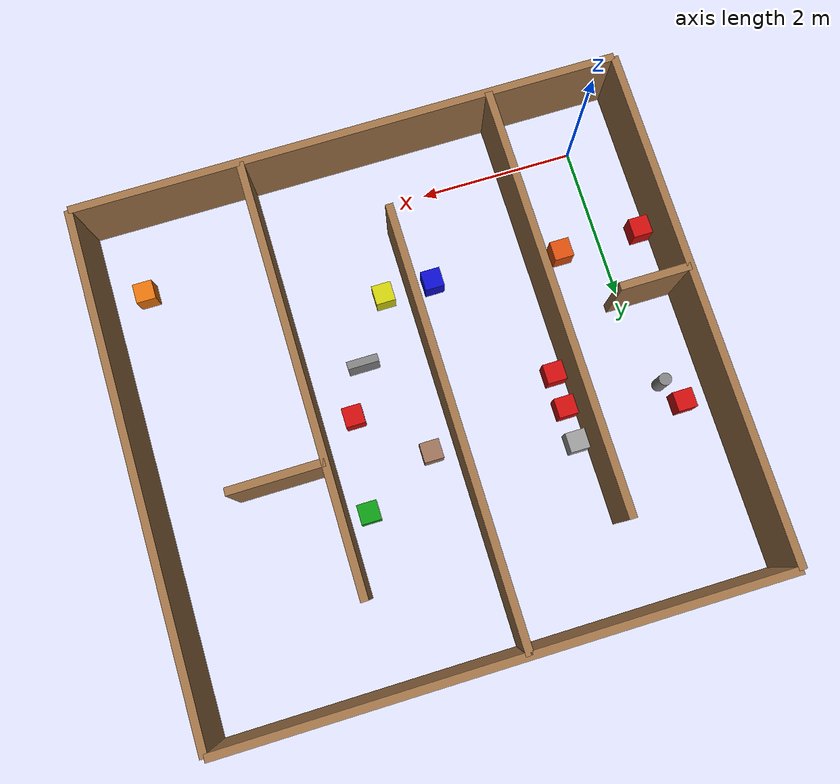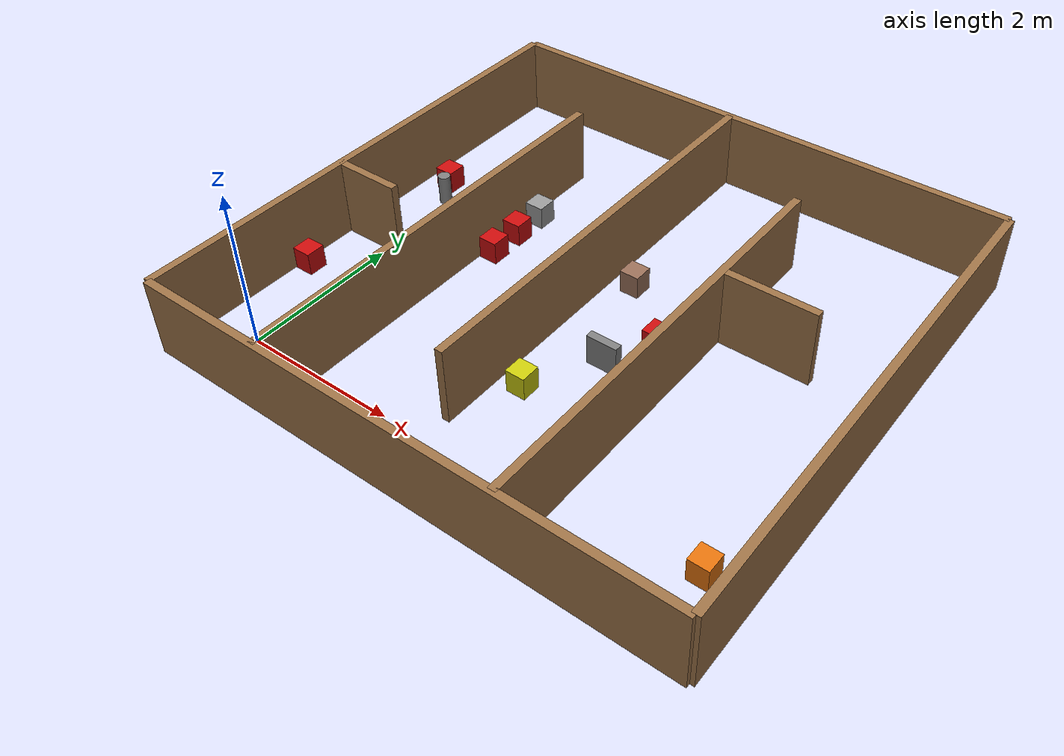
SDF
<sdf version="1.5">
 <world name="estres_rojo_calido">
  <physics type="ode">
   <max_step_size>0.001</max_step_size>
   <real_time_factor>1</real_time_factor>
   <real_time_update_rate>1000</real_time_update_rate>
   <gravity>0 0 -9.8</gravity>
  </physics>
  <plugin filename="gz-sim-physics-system" name="gz::sim::systems::Physics"/>
  <plugin filename="gz-sim-user-commands-system" name="gz::sim::systems::UserCommands"/>
  <plugin filename="gz-sim-scene-broadcaster-system" name="gz::sim::systems::SceneBroadcaster"/>
  <plugin filename="gz-sim-contact-system" name="gz::sim::systems::Contact"/>
  <plugin filename="gz-sim-sensors-system" name="gz::sim::systems::Sensors">
   <render_engine>ogre2</render_engine>
  </plugin>
  <plugin filename="gz-sim-imu-system" name="gz::sim::systems::Imu"/>
  <scene>
   <shadows>false</shadows>
   <ambient>0.2 0.2 0.2 1</ambient>
   <background>1 1 1 1</background>
   <grid>false</grid>
   <origin_visual>false</origin_visual>
  </scene>
  <include><uri>model://sun</uri></include>
  <light name="camera_spot_1_light" type="spot">
   <pose>-6 4 4 0 -1 -0.8</pose>
   <diffuse>0.6 0.45 0.25 1</diffuse>
   <specular>0.1 0.1 0.1 1</specular>
   <direction>0 0 -1</direction>
   <attenuation>
    <range>20</range>
    <constant>0.2</constant>
    <linear>0.01</linear>
    <quadratic>0.001</quadratic>
   </attenuation>
   <cast_shadows>0</cast_shadows>
   <spot><inner_angle>0.6</inner_angle><outer_angle>1</outer_angle><falloff>1</falloff></spot>
  </light>
  <light name="camera_spot_2_light" type="spot">
   <pose>5 -3 4 0 0.8 -0.6</pose>
   <diffuse>0.6 0.45 0.25 1</diffuse>
   <specular>0.1 0.1 0.1 1</specular>
   <direction>0 0 -1</direction>
   <attenuation>
    <range>20</range>
    <constant>0.3</constant>
    <linear>0.01</linear>
    <quadratic>0.001</quadratic>
   </attenuation>
   <cast_shadows>0</cast_shadows>
   <spot><inner_angle>0.6</inner_angle><outer_angle>1</outer_angle><falloff>1</falloff></spot>
  </light>
  <model name="paredes_nuevas">
   <static>true</static>
   <link name="pared_1">
    <pose>2.800000 -0.700000 0.500000 0 0 0.000000000</pose>
    <collision name="collision"><geometry><box><size>7.0 0.1 1.0</size></box></geometry></collision>
    <visual name="visual">
     <geometry><box><size>7.0 0.1 1.0</size></box></geometry>
     <material><ambient>0.62 0.45 0.28 1</ambient><diffuse>0.62 0.45 0.28 1</diffuse></material>
    </visual>
   </link>
   <link name="pared_2">
    <pose>6.300000 2.600000 0.500000 0 0 1.570796327</pose>
    <collision name="collision">
     <geometry><box><size>6.6000000000000005 0.1 1.0</size></box></geometry>
    </collision>
    <visual name="visual">
     <geometry><box><size>6.6000000000000005 0.1 1.0</size></box></geometry>
     <material><ambient>0.62 0.45 0.28 1</ambient><diffuse>0.62 0.45 0.28 1</diffuse></material>
    </visual>
   </link>
   <link name="pared_3">
    <pose>2.800000 5.900000 0.500000 0 0 3.141592654</pose>
    <collision name="collision"><geometry><box><size>7.0 0.1 1.0</size></box></geometry></collision>
    <visual name="visual">
     <geometry><box><size>7.0 0.1 1.0</size></box></geometry>
     <material><ambient>0.62 0.45 0.28 1</ambient><diffuse>0.62 0.45 0.28 1</diffuse></material>
    </visual>
   </link>
   <link name="pared_4">
    <pose>-0.700000 2.600000 0.500000 0 0 -1.570796327</pose>
    <collision name="collision">
     <geometry><box><size>6.6000000000000005 0.1 1.0</size></box></geometry>
    </collision>
    <visual name="visual">
     <geometry><box><size>6.6000000000000005 0.1 1.0</size></box></geometry>
     <material><ambient>0.62 0.45 0.28 1</ambient><diffuse>0.62 0.45 0.28 1</diffuse></material>
    </visual>
   </link>
   <link name="pared_5">
    <pose>0.950000 2.050000 0.500000 0 0 1.570796327</pose>
    <collision name="collision"><geometry><box><size>5.5 0.1 1.0</size></box></geometry></collision>
    <visual name="visual">
     <geometry><box><size>5.5 0.1 1.0</size></box></geometry>
     <material><ambient>0.62 0.45 0.28 1</ambient><diffuse>0.62 0.45 0.28 1</diffuse></material>
    </visual>
   </link>
   <link name="pared_6">
    <pose>2.550000 3.125000 0.500000 0 0 1.570796327</pose>
    <collision name="collision"><geometry><box><size>5.550000000000001 0.1 1.0</size></box></geometry></collision>
    <visual name="visual">
     <geometry><box><size>5.550000000000001 0.1 1.0</size></box></geometry>
     <material><ambient>0.62 0.45 0.28 1</ambient><diffuse>0.62 0.45 0.28 1</diffuse></material>
    </visual>
   </link>
   <link name="pared_7">
    <pose>4.150000 2.050000 0.500000 0 0 1.570796327</pose>
    <collision name="collision"><geometry><box><size>5.5 0.1 1.0</size></box></geometry></collision>
    <visual name="visual">
     <geometry><box><size>5.5 0.1 1.0</size></box></geometry>
     <material><ambient>0.62 0.45 0.28 1</ambient><diffuse>0.62 0.45 0.28 1</diffuse></material>
    </visual>
   </link>
   <link name="pared_8">
    <pose>-0.250000 2.150000 0.500000 0 0 0.000000000</pose>
    <collision name="collision">
     <geometry><box><size>0.8999999999999999 0.1 1.0</size></box></geometry>
    </collision>
    <visual name="visual">
     <geometry><box><size>0.8999999999999999 0.1 1.0</size></box></geometry>
     <material><ambient>0.62 0.45 0.28 1</ambient><diffuse>0.62 0.45 0.28 1</diffuse></material>
    </visual>
   </link>
   <link name="pared_9">
    <pose>4.750000 3.150000 0.500000 0 0 0.000000000</pose>
    <collision name="collision">
     <geometry><box><size>1.1999999999999993 0.1 1.0</size></box></geometry>
    </collision>
    <visual name="visual">
     <geometry><box><size>1.1999999999999993 0.1 1.0</size></box></geometry>
     <material><ambient>0.62 0.45 0.28 1</ambient><diffuse>0.62 0.45 0.28 1</diffuse></material>
    </visual>
   </link>
  </model>
  <model name="marcas_color">
   <static>true</static>
   <link name="cuadrado_rojo_1">
    <pose>-0.515 1.3 0.15 0 0 0</pose>
    <collision name="collision"><geometry><box><size>0.25 0.25 0.3</size></box></geometry></collision>
    <visual name="visual">
     <geometry><box><size>0.25 0.25 0.3</size></box></geometry>
     <material>
      <ambient>0.8 0.05 0.05 1</ambient>
      <diffuse>0.8 0.05 0.05 1</diffuse>
      <specular>0.1 0.1 0.1 1</specular>
     </material>
    </visual>
   </link>
   <link name="cuadrado_naranja_1">
    <pose>0.55 1.3 0.15 0 0 0</pose>
    <collision name="collision"><geometry><box><size>0.25 0.25 0.3</size></box></geometry></collision>
    <visual name="visual">
     <geometry><box><size>0.25 0.25 0.3</size></box></geometry>
     <material><ambient>0.85 0.3 0.05 1</ambient><diffuse>0.85 0.3 0.05 1</diffuse></material>
    </visual>
   </link>
   <link name="cuadrado_rojo_2">
    <pose>-0.3 3.6 0.15 0 0 0</pose>
    <collision name="collision"><geometry><box><size>0.25 0.25 0.3</size></box></geometry></collision>
    <visual name="visual">
     <geometry><box><size>0.25 0.25 0.3</size></box></geometry>
     <material>
      <ambient>0.8 0.05 0.05 1</ambient>
      <diffuse>0.8 0.05 0.05 1</diffuse>
      <specular>0.1 0.1 0.1 1</specular>
     </material>
    </visual>
   </link>
   <link name="cuadrado_rojo_3">
    <pose>1.14 2.8 0.15 0 0 0</pose>
    <collision name="collision"><geometry><box><size>0.25 0.25 0.3</size></box></geometry></collision>
    <visual name="visual">
     <geometry><box><size>0.25 0.25 0.3</size></box></geometry>
     <material>
      <ambient>0.8 0.05 0.05 1</ambient>
      <diffuse>0.8 0.05 0.05 1</diffuse>
      <specular>0.1 0.1 0.1 1</specular>
     </material>
    </visual>
   </link>
   <link name="cuadrado_rojo_4">
    <pose>1.14 3.25 0.15 0 0 0</pose>
    <collision name="collision"><geometry><box><size>0.25 0.25 0.3</size></box></geometry></collision>
    <visual name="visual">
     <geometry><box><size>0.25 0.25 0.3</size></box></geometry>
     <material>
      <ambient>0.8 0.05 0.05 1</ambient>
      <diffuse>0.8 0.05 0.05 1</diffuse>
      <specular>0.1 0.1 0.1 1</specular>
     </material>
    </visual>
   </link>
   <link name="cuadrado_neutro_1">
    <pose>1.14 3.7 0.15 0 0 0</pose>
    <collision name="collision"><geometry><box><size>0.25 0.25 0.3</size></box></geometry></collision>
    <visual name="visual">
     <geometry><box><size>0.25 0.25 0.3</size></box></geometry>
     <material><ambient>0.6 0.6 0.6 1</ambient><diffuse>0.6 0.6 0.6 1</diffuse></material>
    </visual>
   </link>
   <link name="cuadrado_azul_1">
    <pose>2.25 1.2 0.15 0 0 0</pose>
    <collision name="collision"><geometry><box><size>0.25 0.25 0.3</size></box></geometry></collision>
    <visual name="visual">
     <geometry><box><size>0.25 0.25 0.3</size></box></geometry>
     <material><ambient>0.05 0.05 0.8 1</ambient><diffuse>0.05 0.05 0.8 1</diffuse></material>
    </visual>
   </link>
   <link name="cuadrado_amarillo_1">
    <pose>2.9 1.2 0.15 0 0 0</pose>
    <collision name="collision"><geometry><box><size>0.25 0.25 0.3</size></box></geometry></collision>
    <visual name="visual">
     <geometry><box><size>0.25 0.25 0.3</size></box></geometry>
     <material><ambient>0.8 0.8 0.05 1</ambient><diffuse>0.8 0.8 0.05 1</diffuse></material>
    </visual>
   </link>
   <link name="cuadrado_carton_1">
    <pose>2.9 3.3 0.15 0 0 0</pose>
    <collision name="collision"><geometry><box><size>0.25 0.25 0.3</size></box></geometry></collision>
    <visual name="visual">
     <geometry><box><size>0.25 0.25 0.3</size></box></geometry>
     <material><ambient>0.6 0.44 0.35 1</ambient><diffuse>0.6 0.44 0.35 1</diffuse></material>
    </visual>
   </link>
   <link name="cuadrado_verde_1">
    <pose>3.85 3.8 0.15 0 0 0</pose>
    <collision name="collision"><geometry><box><size>0.25 0.25 0.3</size></box></geometry></collision>
    <visual name="visual">
     <geometry><box><size>0.25 0.25 0.3</size></box></geometry>
     <material><ambient>0.05 0.6 0.08 1</ambient><diffuse>0.05 0.6 0.08 1</diffuse></material>
    </visual>
   </link>
   <link name="cuadrado_rojo_5">
    <pose>3.7 2.6 0.15 0 0 0</pose>
    <collision name="collision"><geometry><box><size>0.25 0.25 0.3</size></box></geometry></collision>
    <visual name="visual">
     <geometry><box><size>0.25 0.25 0.3</size></box></geometry>
     <material>
      <ambient>0.8 0.05 0.05 1</ambient>
      <diffuse>0.8 0.05 0.05 1</diffuse>
      <specular>0.1 0.1 0.1 1</specular>
     </material>
    </visual>
   </link>
   <link name="cuadrado_naranja_2">
    <pose>5.8 0.3 0.15 0 0 0</pose>
    <collision name="collision"><geometry><box><size>0.25 0.25 0.3</size></box></geometry></collision>
    <visual name="visual">
     <geometry><box><size>0.25 0.25 0.3</size></box></geometry>
     <material><ambient>0.9 0.45 0.05 1</ambient><diffuse>0.9 0.45 0.05 1</diffuse></material>
    </visual>
   </link>
  </model>
  <model name="senuelo_obstaculos">
   <static>true</static>
   <link name="senuelo_poste">
    <pose>-0.12 3.3 0.20 0 0 0</pose>
    <collision name="collision">
     <geometry><cylinder><radius>0.08</radius><length>0.40</length></cylinder></geometry>
    </collision>
    <visual name="visual">
     <geometry><cylinder><radius>0.08</radius><length>0.40</length></cylinder></geometry>
     <material><ambient>0.5 0.5 0.5 1</ambient><diffuse>0.5 0.5 0.5 1</diffuse></material>
    </visual>
   </link>
   <link name="senuelo_panel">
    <pose>3.4 2.0 0.20 0 0 0</pose>
    <collision name="collision"><geometry><box><size>0.40 0.10 0.40</size></box></geometry></collision>
    <visual name="visual">
     <geometry><box><size>0.40 0.10 0.40</size></box></geometry>
     <material><ambient>0.5 0.5 0.5 1</ambient><diffuse>0.5 0.5 0.5 1</diffuse></material>
    </visual>
   </link>
  </model>
 </world>
</sdf>
